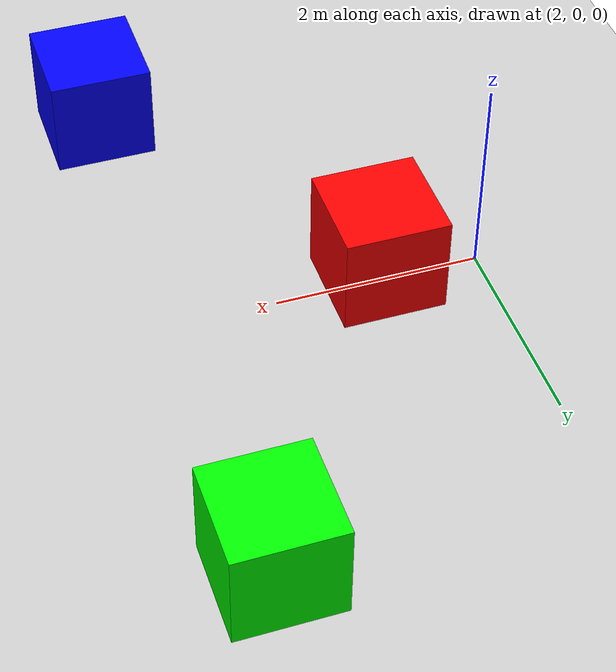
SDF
<?xml version="1.0" ?>
<sdf version="1.7">
  <world name="default">
    <include>
      <uri>model://sun</uri>
    </include>
    <include>
      <uri>model://ground_plane</uri>
    </include>

    <model name='box1'>
      <static>1</static>
      <pose>3 0 0.5 0 0 0</pose>
      <link name='link'>
        <collision name='collision'>
          <geometry>
            <box>
              <size>1 1 1</size>
            </box>
          </geometry>
        </collision>
        <visual name='visual'>
          <geometry>
            <box>
              <size>1 1 1</size>
            </box>
          </geometry>
          <material>
            <ambient>1 0 0 1</ambient>
            <diffuse>1 0 0 1</diffuse>
          </material>
        </visual>
      </link>
    </model>

    <model name='box2'>
      <static>1</static>
      <pose>5 3 0.5 0 0 0</pose>
      <link name='link'>
        <collision name='collision'>
          <geometry>
            <box>
              <size>1 1 1</size>
            </box>
          </geometry>
        </collision>
        <visual name='visual'>
          <geometry>
            <box>
              <size>1 1 1</size>
            </box>
          </geometry>
          <material>
            <ambient>0 1 0 1</ambient>
            <diffuse>0 1 0 1</diffuse>
          </material>
        </visual>
      </link>
    </model>

    <model name='box3'>
      <static>1</static>
      <pose>5 -3 0.5 0 0 0</pose>
      <link name='link'>
        <collision name='collision'>
          <geometry>
            <box>
              <size>1 1 1</size>
            </box>
          </geometry>
        </collision>
        <visual name='visual'>
          <geometry>
            <box>
              <size>1 1 1</size>
            </box>
          </geometry>
          <material>
            <ambient>0 0 1 1</ambient>
            <diffuse>0 0 1 1</diffuse>
          </material>
        </visual>
      </link>
    </model>

    <physics type="ode">
      <max_step_size>0.001</max_step_size>
      <real_time_factor>1</real_time_factor>
      <real_time_update_rate>1000</real_time_update_rate>
    </physics>
  </world>
</sdf>
